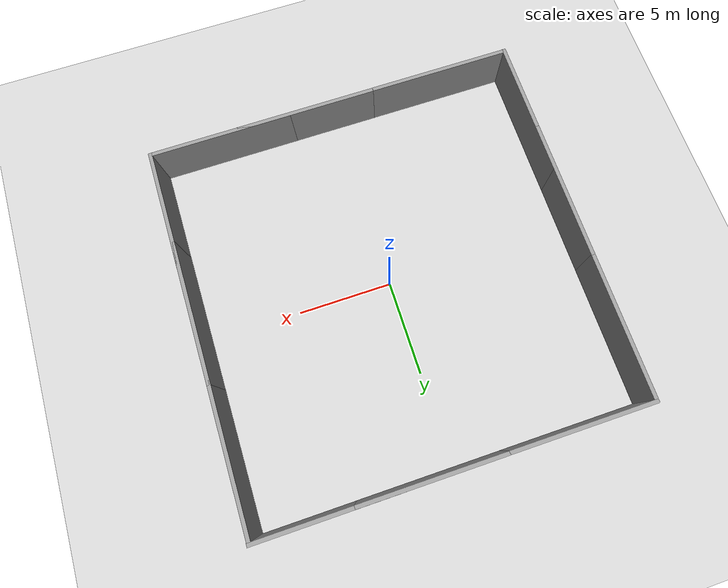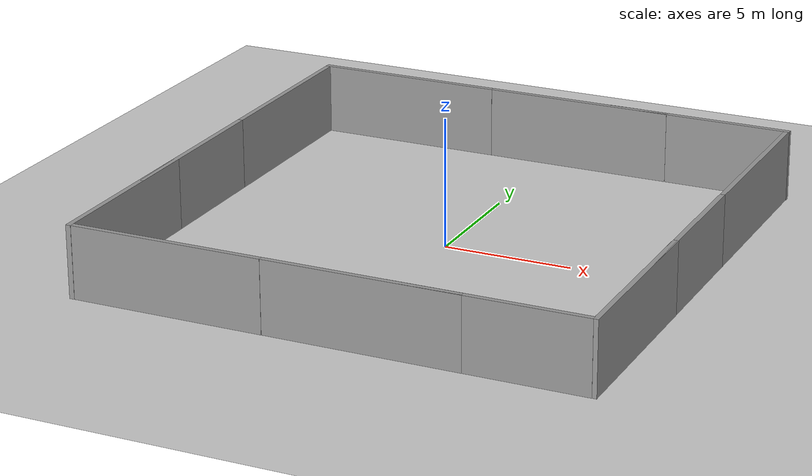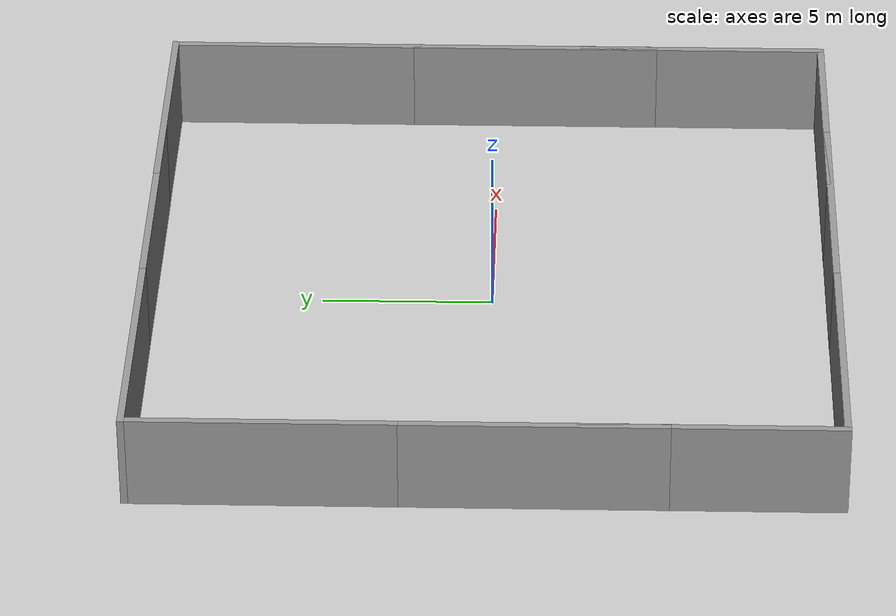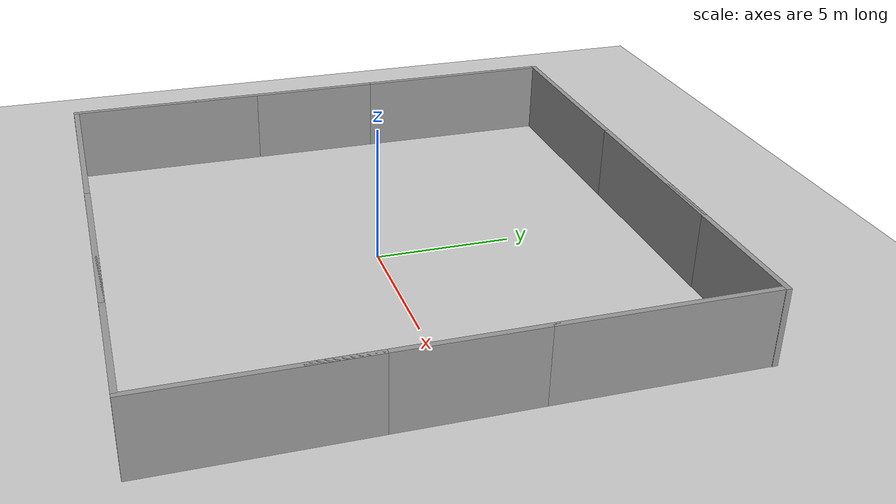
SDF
<sdf version="1.7">
 <world name="default">
  <light name="sun" type="directional">
   <pose>0 0 10 0 -0 0</pose>
   <diffuse>0.8 0.8 0.8 1</diffuse>
   <specular>0.2 0.2 0.2 1</specular>
   <attenuation>
    <range>1000</range>
    <constant>0.9</constant>
    <linear>0.01</linear>
    <quadratic>0.001</quadratic>
   </attenuation>
   <direction>-0.5 0.1 -0.9</direction>
   <spot><inner_angle>0</inner_angle><outer_angle>0</outer_angle><falloff>0</falloff></spot>
  </light>
  <model name="ground_plane">
   <static>1</static>
   <link name="link">
    <collision name="collision">
     <geometry><plane><normal>0 0 1</normal><size>100 100</size></plane></geometry>
     <surface><friction><ode><mu>100</mu><mu2>50</mu2></ode></friction></surface>
    </collision>
    <visual name="visual">
     <cast_shadows>0</cast_shadows>
     <geometry><plane><normal>0 0 1</normal><size>100 100</size></plane></geometry>
     <material>
      <script><uri>file://media/materials/scripts/gazebo.material</uri><name>Gazebo/Grey</name></script>
     </material>
    </visual>
   </link>
  </model>
  <gravity>0 0 -9.8</gravity>
  <magnetic_field>6e-06 2.3e-05 -4.2e-05</magnetic_field>
  <atmosphere type="adiabatic"/>
  <physics type="ode">
   <max_step_size>0.001</max_step_size>
   <real_time_factor>1</real_time_factor>
   <real_time_update_rate>1000</real_time_update_rate>
  </physics>
  <scene><ambient>0.4 0.4 0.4 1</ambient><background>0.7 0.7 0.7 1</background><shadows>1</shadows></scene>
  <spherical_coordinates>
   <surface_model>EARTH_WGS84</surface_model>
   <latitude_deg>0</latitude_deg>
   <longitude_deg>0</longitude_deg>
   <elevation>0</elevation>
   <heading_deg>0</heading_deg>
  </spherical_coordinates>
  <model name="grey_wall">
   <static>1</static>
   <link name="link">
    <pose>0 0 1.4 0 -0 0</pose>
    <collision name="collision"><geometry><box><size>7.5 0.2 2.8</size></box></geometry></collision>
    <visual name="visual">
     <cast_shadows>0</cast_shadows>
     <geometry><box><size>7.5 0.2 2.8</size></box></geometry>
     <material>
      <script>
       <uri>model://grey_wall/materials/scripts</uri>
       <uri>model://grey_wall/materials/textures</uri>
       <name>vrc/grey_wall</name>
      </script>
     </material>
    </visual>
   </link>
   <pose>-6.24566 10.003 0 0 -0 0</pose>
  </model>
  <model name="grey_wall_0">
   <static>1</static>
   <link name="link">
    <pose>0 0 1.4 0 -0 0</pose>
    <collision name="collision"><geometry><box><size>7.5 0.2 2.8</size></box></geometry></collision>
    <visual name="visual">
     <cast_shadows>0</cast_shadows>
     <geometry><box><size>7.5 0.2 2.8</size></box></geometry>
     <material>
      <script>
       <uri>model://grey_wall/materials/scripts</uri>
       <uri>model://grey_wall/materials/textures</uri>
       <name>vrc/grey_wall</name>
      </script>
     </material>
    </visual>
   </link>
   <pose>1.2305 10.0065 0 0 -0 0</pose>
  </model>
  <model name="grey_wall_1">
   <static>1</static>
   <link name="link">
    <pose>0 0 1.4 0 -0 0</pose>
    <collision name="collision"><geometry><box><size>7.5 0.2 2.8</size></box></geometry></collision>
    <visual name="visual">
     <cast_shadows>0</cast_shadows>
     <geometry><box><size>7.5 0.2 2.8</size></box></geometry>
     <material>
      <script>
       <uri>model://grey_wall/materials/scripts</uri>
       <uri>model://grey_wall/materials/textures</uri>
       <name>vrc/grey_wall</name>
      </script>
     </material>
    </visual>
   </link>
   <pose>6.24884 10.0107 0 0 -0 0</pose>
  </model>
  <model name="grey_wall_2">
   <static>1</static>
   <link name="link">
    <pose>0 0 1.4 0 -0 0</pose>
    <collision name="collision"><geometry><box><size>7.5 0.2 2.8</size></box></geometry></collision>
    <visual name="visual">
     <cast_shadows>0</cast_shadows>
     <geometry><box><size>7.5 0.2 2.8</size></box></geometry>
     <material>
      <script>
       <uri>model://grey_wall/materials/scripts</uri>
       <uri>model://grey_wall/materials/textures</uri>
       <name>vrc/grey_wall</name>
      </script>
     </material>
    </visual>
   </link>
   <pose>9.87914 6.16615 0 0 0 -1.57103</pose>
  </model>
  <model name="grey_wall_2_clone">
   <static>1</static>
   <link name="link">
    <pose>0 0 1.4 0 -0 0</pose>
    <collision name="collision"><geometry><box><size>7.5 0.2 2.8</size></box></geometry></collision>
    <visual name="visual">
     <cast_shadows>0</cast_shadows>
     <geometry><box><size>7.5 0.2 2.8</size></box></geometry>
     <material>
      <script>
       <uri>model://grey_wall/materials/scripts</uri>
       <uri>model://grey_wall/materials/textures</uri>
       <name>vrc/grey_wall</name>
      </script>
     </material>
    </visual>
   </link>
   <pose>9.87645 -1.0996 0 0 0 -1.57103</pose>
  </model>
  <model name="grey_wall_2_clone_0">
   <static>1</static>
   <link name="link">
    <pose>0 0 1.4 0 -0 0</pose>
    <collision name="collision"><geometry><box><size>7.5 0.2 2.8</size></box></geometry></collision>
    <visual name="visual">
     <cast_shadows>0</cast_shadows>
     <geometry><box><size>7.5 0.2 2.8</size></box></geometry>
     <material>
      <script>
       <uri>model://grey_wall/materials/scripts</uri>
       <uri>model://grey_wall/materials/textures</uri>
       <name>vrc/grey_wall</name>
      </script>
     </material>
    </visual>
   </link>
   <pose>9.87843 -6.23458 0 0 0 -1.57103</pose>
  </model>
  <model name="grey_wall_2_clone_1">
   <static>1</static>
   <link name="link">
    <pose>0 0 1.4 0 -0 0</pose>
    <collision name="collision"><geometry><box><size>7.5 0.2 2.8</size></box></geometry></collision>
    <visual name="visual">
     <cast_shadows>0</cast_shadows>
     <geometry><box><size>7.5 0.2 2.8</size></box></geometry>
     <material>
      <script>
       <uri>model://grey_wall/materials/scripts</uri>
       <uri>model://grey_wall/materials/textures</uri>
       <name>vrc/grey_wall</name>
      </script>
     </material>
    </visual>
   </link>
   <pose>-9.89941 6.15314 0 0 0 -1.57103</pose>
  </model>
  <model name="grey_wall_2_clone_2">
   <static>1</static>
   <link name="link">
    <pose>0 0 1.4 0 -0 0</pose>
    <collision name="collision"><geometry><box><size>7.5 0.2 2.8</size></box></geometry></collision>
    <visual name="visual">
     <cast_shadows>0</cast_shadows>
     <geometry><box><size>7.5 0.2 2.8</size></box></geometry>
     <material>
      <script>
       <uri>model://grey_wall/materials/scripts</uri>
       <uri>model://grey_wall/materials/textures</uri>
       <name>vrc/grey_wall</name>
      </script>
     </material>
    </visual>
   </link>
   <pose>-9.90319 -1.32505 0 0 0 -1.57103</pose>
  </model>
  <model name="grey_wall_2_clone_3">
   <static>1</static>
   <link name="link">
    <pose>0 0 1.4 0 -0 0</pose>
    <collision name="collision"><geometry><box><size>7.5 0.2 2.8</size></box></geometry></collision>
    <visual name="visual">
     <cast_shadows>0</cast_shadows>
     <geometry><box><size>7.5 0.2 2.8</size></box></geometry>
     <material>
      <script>
       <uri>model://grey_wall/materials/scripts</uri>
       <uri>model://grey_wall/materials/textures</uri>
       <name>vrc/grey_wall</name>
      </script>
     </material>
    </visual>
   </link>
   <pose>-9.90346 -6.2597 0 0 0 -1.57103</pose>
  </model>
  <model name="grey_wall_1_clone">
   <static>1</static>
   <link name="link">
    <pose>0 0 1.4 0 -0 0</pose>
    <collision name="collision"><geometry><box><size>7.5 0.2 2.8</size></box></geometry></collision>
    <visual name="visual">
     <cast_shadows>0</cast_shadows>
     <geometry><box><size>7.5 0.2 2.8</size></box></geometry>
     <material>
      <script>
       <uri>model://grey_wall/materials/scripts</uri>
       <uri>model://grey_wall/materials/textures</uri>
       <name>vrc/grey_wall</name>
      </script>
     </material>
    </visual>
   </link>
   <pose>-6.07987 -9.9001 0 0 -0 0</pose>
  </model>
  <model name="grey_wall_1_clone_0">
   <static>1</static>
   <link name="link">
    <pose>0 0 1.4 0 -0 0</pose>
    <collision name="collision"><geometry><box><size>7.5 0.2 2.8</size></box></geometry></collision>
    <visual name="visual">
     <cast_shadows>0</cast_shadows>
     <geometry><box><size>7.5 0.2 2.8</size></box></geometry>
     <material>
      <script>
       <uri>model://grey_wall/materials/scripts</uri>
       <uri>model://grey_wall/materials/textures</uri>
       <name>vrc/grey_wall</name>
      </script>
     </material>
    </visual>
   </link>
   <pose>1.42212 -9.89422 0 0 -0 0</pose>
  </model>
  <model name="grey_wall_1_clone_1">
   <static>1</static>
   <link name="link">
    <pose>0 0 1.4 0 -0 0</pose>
    <collision name="collision"><geometry><box><size>7.5 0.2 2.8</size></box></geometry></collision>
    <visual name="visual">
     <cast_shadows>0</cast_shadows>
     <geometry><box><size>7.5 0.2 2.8</size></box></geometry>
     <material>
      <script>
       <uri>model://grey_wall/materials/scripts</uri>
       <uri>model://grey_wall/materials/textures</uri>
       <name>vrc/grey_wall</name>
      </script>
     </material>
    </visual>
   </link>
   <pose>6.05839 -9.8896 0 0 -0 0</pose>
  </model>
 </world>
</sdf>
